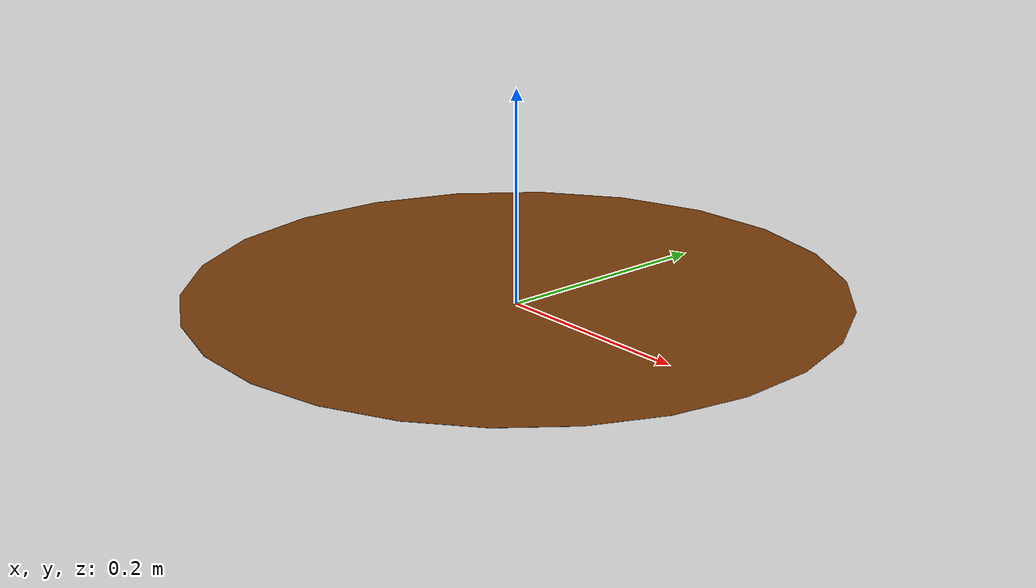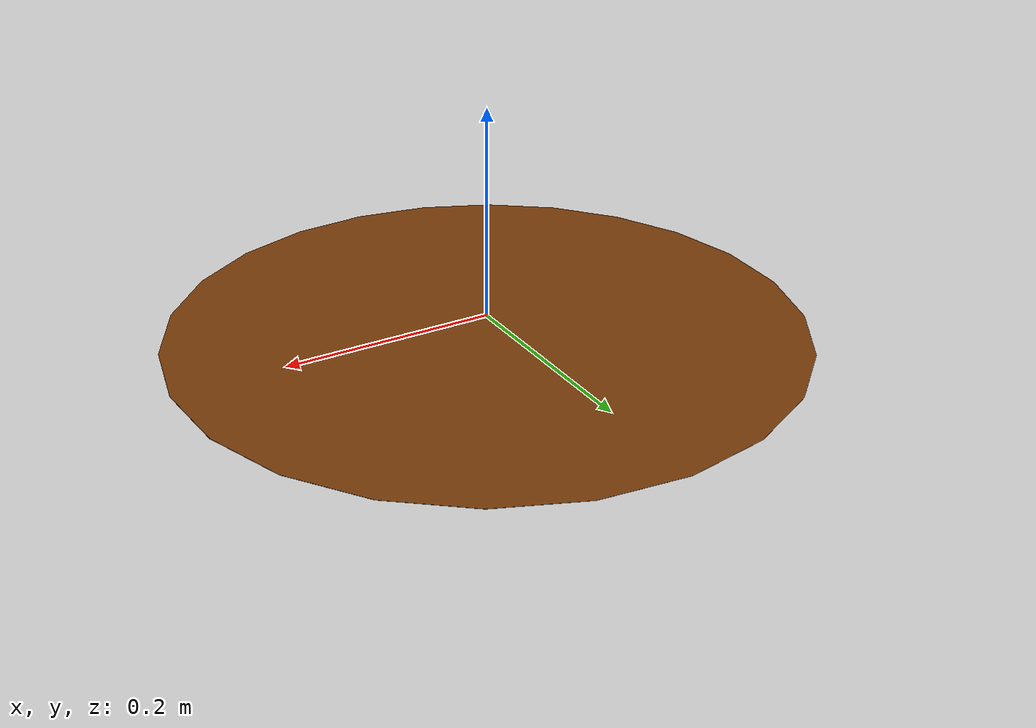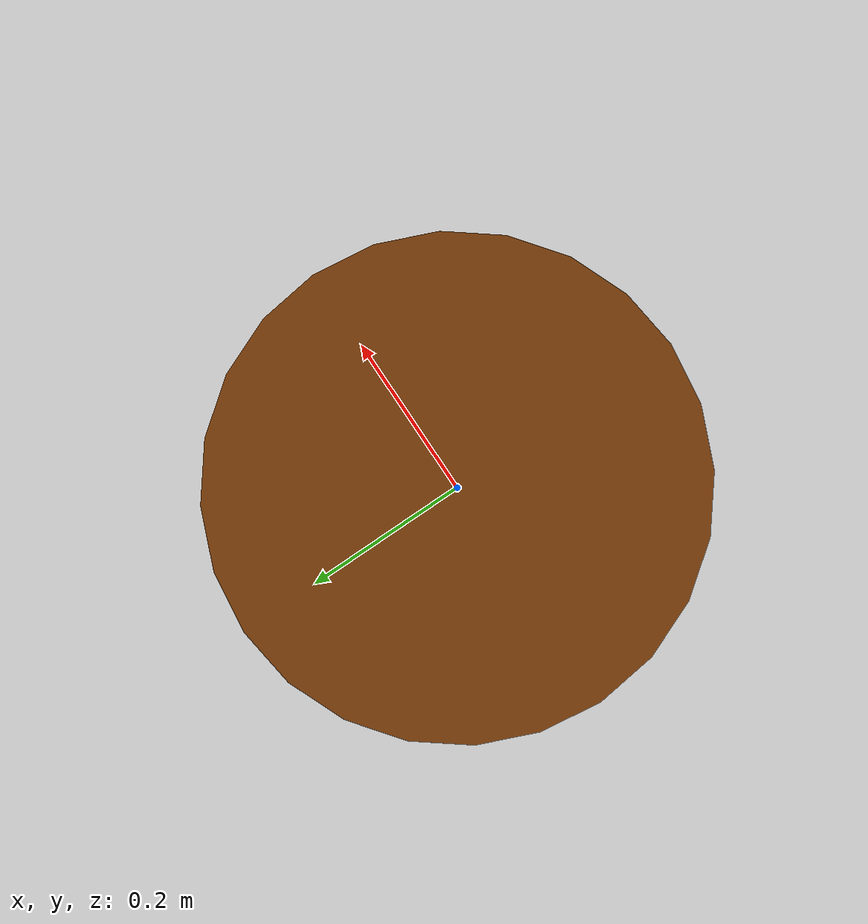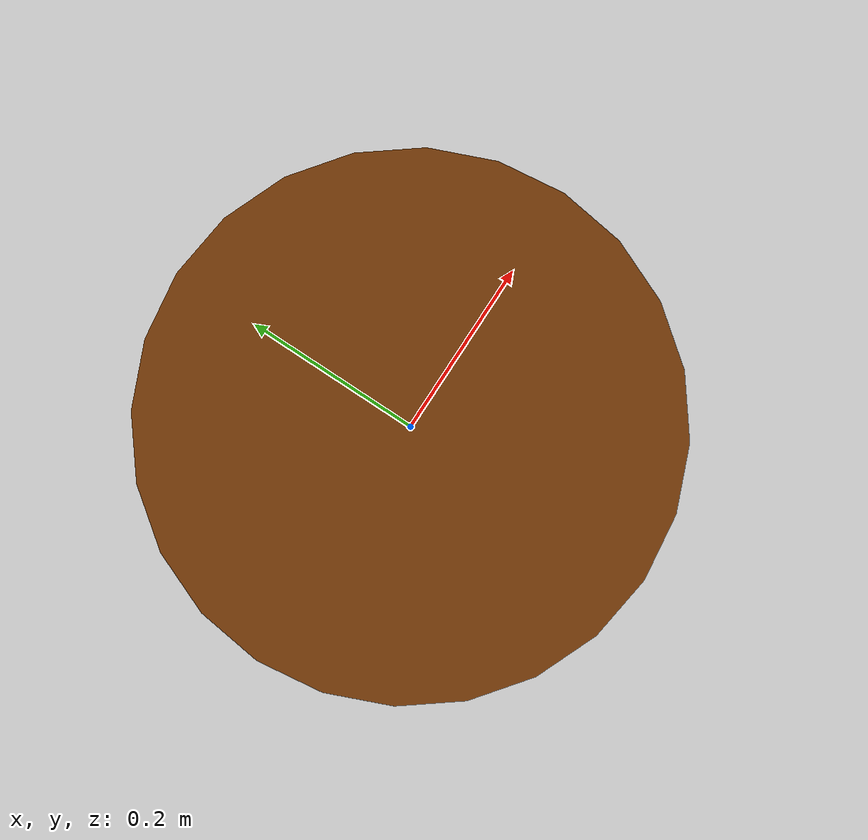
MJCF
<mujoco model="stool">
  <worldbody>
    <body name="stool" pos="0 0 0" quat="1 0 0 0">
      <geom name="base" type="cylinder" pos="0 0 0" size=".3 0.0001" mass="0.001" material="seat"/>
    </body>
  </worldbody>

  <asset>
    <material name="seat" rgba="0.5 0.25 0.04 1"/>
    <material name="wood" rgba="0.6 0.32 0.07 1"/>
  </asset>

  <keyframe>
    <key name="home"
      qpos="0.039
  -0.0069
   0.52
   1
  -0.019
  -0.029
   0.062
   0.24
  -0.074
   0.054
  -0.48
  -0.36
  -2.5
  -2.4
   0.34
   0.34
  -0.27
  -0.39
  -2.5
  -2.3
   0.36
   0.25
   0.67
  -0.94
  -1.1
   0.72
  -1.1
  -0.88"/>
  </keyframe>
</mujoco>
